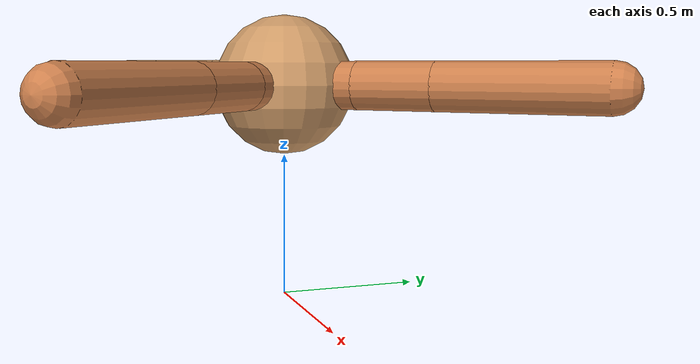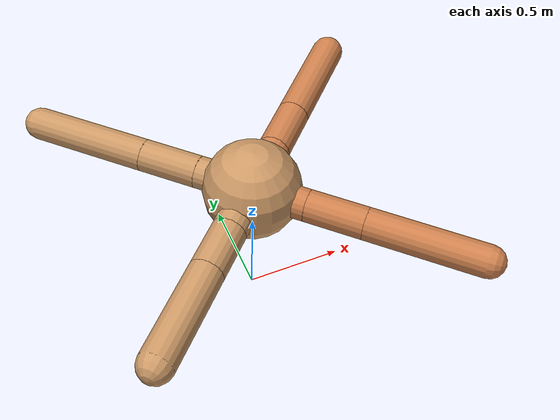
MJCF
<?xml version="1.0" ?>
<mujoco model="ant">

	<compiler angle="degree" coordinate="local" inertiafromgeom="true"/>

	<option integrator="RK4" timestep="0.01"/>

	<custom>

		<numeric data="0.0 0.0 0.55 1.0 0.0 0.0 0.0 0.0 1.0 0.0 -1.0 0.0 -1.0 0.0 1.0" name="init_qpos"/>

	</custom>

	<default>

		<joint armature="1" damping="1" limited="true"/>

		<geom conaffinity="0" condim="3" density="5.0" friction="1.5 0.1 0.1" margin="0.01" rgba="0.8 0.6 0.4 1"/>

	</default>

	<worldbody>

		<body name="torso" pos="0 0 0.75">

			<geom name="torso_geom" pos="0 0 0" size="0.24386197725995107" type="sphere"/>

			<!--joint armature="0" damping="0" limited="false" margin="0.01" name="root" pos="0 0 0" type="free"/-->

			<body name="front_left_leg" pos="0 0 0">

				<geom fromto="0 0 0 0.2 0.2 0" name="aux_1_geom" size="0.08319192125023914" type="capsule" rgba=".8 .5 .3 1"/>

				<body name="aux_1" pos="0.2 0.2 0">

					<joint axis="0 0 1" name="hip_1" pos="0.0 0.0 0.0" range="-40 40" type="hinge"/>

					<geom fromto="0 0 0 0.1912988348037892 0.1912988348037892 0" name="left_leg_geom" size="0.08319192125023914" type="capsule" rgba=".8 .5 .3 1"/>

					<body pos="0.1912988348037892 0.1912988348037892 0" name="front_left_foot">

						<joint axis="-1 1 0" name="ankle_1" pos="0.0 0.0 0.0" range="30 100" type="hinge"/>

						<geom fromto="0 0 0 0.3825976696075784 0.3825976696075784 0" name="left_ankle_geom" size="0.08319192125023914" type="capsule" rgba=".8 .5 .3 1"/>

					</body>

				</body>

			</body>

			<body name="front_right_leg" pos="0 0 0">

				<geom fromto="0 0 0 -0.2 0.2 0" name="aux_2_geom" size="0.08143992209285492" type="capsule"/>

				<body name="aux_2" pos="-0.2 0.2 0">

					<joint axis="0 0 1" name="hip_2" pos="0.0 0.0 0.0" range="-40 40" type="hinge"/>

					<geom fromto="0 0 0 -0.20923100740285294 0.20923100740285294 0" name="right_leg_geom" size="0.08143992209285492" type="capsule"/>

					<body pos="-0.20923100740285294 0.20923100740285294 0" name="front_right_foot">

						<joint axis="1 1 0" name="ankle_2" pos="0.0 0.0 0.0" range="-100 -30" type="hinge"/>

						<geom fromto="0 0 0 -0.4184620148057059 0.4184620148057059 0" name="right_ankle_geom" size="0.08143992209285492" type="capsule"/>

					</body>

				</body>

			</body>

			<body name="left_back_leg" pos="0 0 0">

				<geom fromto="0 0 0 -0.2 -0.2 0" name="aux_3_geom" size="0.08729678666512271" type="capsule"/>

				<body name="aux_3" pos="-0.2 -0.2 0">

					<joint axis="0 0 1" name="hip_3" pos="0.0 0.0 0.0" range="-40 40" type="hinge"/>

					<geom fromto="0 0 0 -0.1802943596496318 -0.1802943596496318 0" name="back_leg_geom" size="0.08729678666512271" type="capsule"/>

					<body pos="-0.1802943596496318 -0.1802943596496318 0" name="left_back_foot">

						<joint axis="-1 1 0" name="ankle_3" pos="0.0 0.0 0.0" range="-100 -30" type="hinge"/>

						<geom fromto="0 0 0 -0.3605887192992636 -0.3605887192992636 0" name="third_ankle_geom" size="0.08729678666512271" type="capsule"/>

					</body>

				</body>

			</body>

			<body name="right_back_leg" pos="0 0 0">

				<geom fromto="0 0 0 0.2 -0.2 0" name="aux_4_geom" size="0.08004689978408337" type="capsule" rgba=".8 .5 .3 1"/>

				<body name="aux_4" pos="0.2 -0.2 0">

					<joint axis="0 0 1" name="hip_4" pos="0.0 0.0 0.0" range="-40 40" type="hinge"/>

					<geom fromto="0 0 0 0.20480780591679204 -0.20480780591679204 0" name="rightback_leg_geom" size="0.08004689978408337" type="capsule" rgba=".8 .5 .3 1"/>

					<body pos="0.20480780591679204 -0.20480780591679204 0" name="right_back_foot">

						<joint axis="1 1 0" name="ankle_4" pos="0.0 0.0 0.0" range="30 100" type="hinge"/>

						<geom fromto="0 0 0 0.4096156118335841 -0.4096156118335841 0" name="fourth_ankle_geom" size="0.08004689978408337" type="capsule" rgba=".8 .5 .3 1"/>

					</body>

				</body>

			</body>

		</body>

	</worldbody>

	<actuator>

		<motor ctrllimited="true" ctrlrange="-1.0 1.0" joint="hip_4" gear="150"/>

		<motor ctrllimited="true" ctrlrange="-1.0 1.0" joint="ankle_4" gear="150"/>

		<motor ctrllimited="true" ctrlrange="-1.0 1.0" joint="hip_1" gear="150"/>

		<motor ctrllimited="true" ctrlrange="-1.0 1.0" joint="ankle_1" gear="150"/>

		<motor ctrllimited="true" ctrlrange="-1.0 1.0" joint="hip_2" gear="150"/>

		<motor ctrllimited="true" ctrlrange="-1.0 1.0" joint="ankle_2" gear="150"/>

		<motor ctrllimited="true" ctrlrange="-1.0 1.0" joint="hip_3" gear="150"/>

		<motor ctrllimited="true" ctrlrange="-1.0 1.0" joint="ankle_3" gear="150"/>

	</actuator>

</mujoco>
